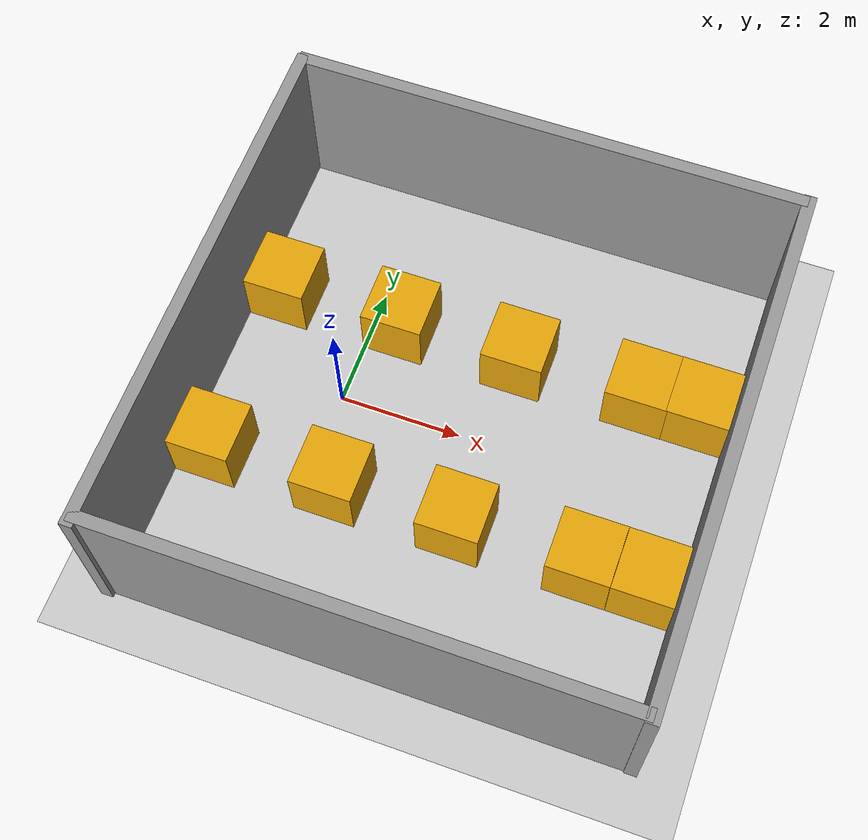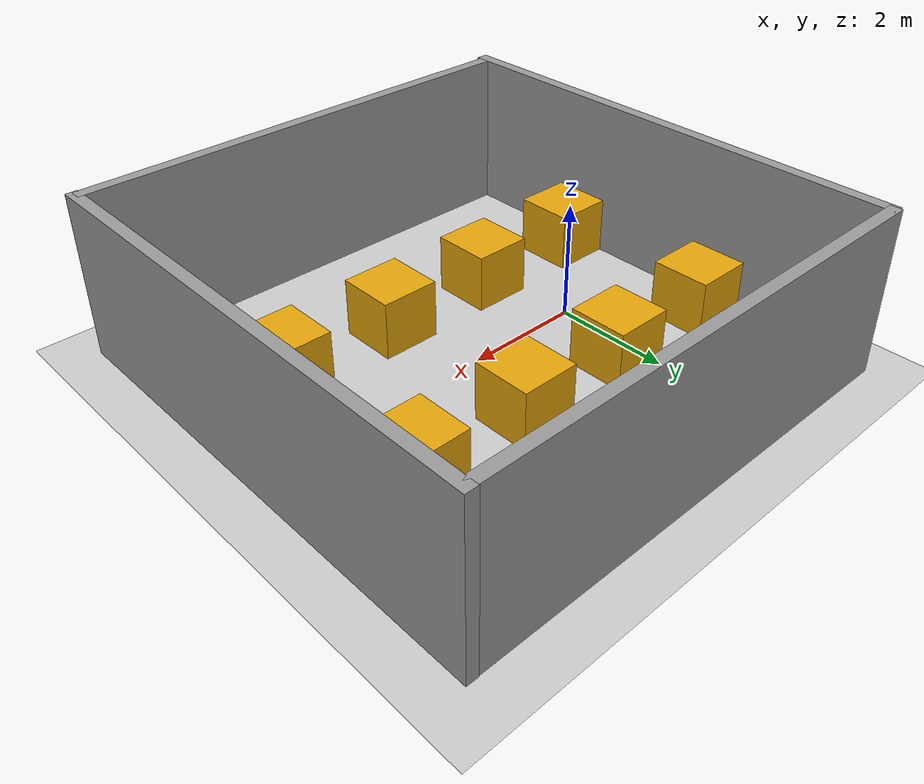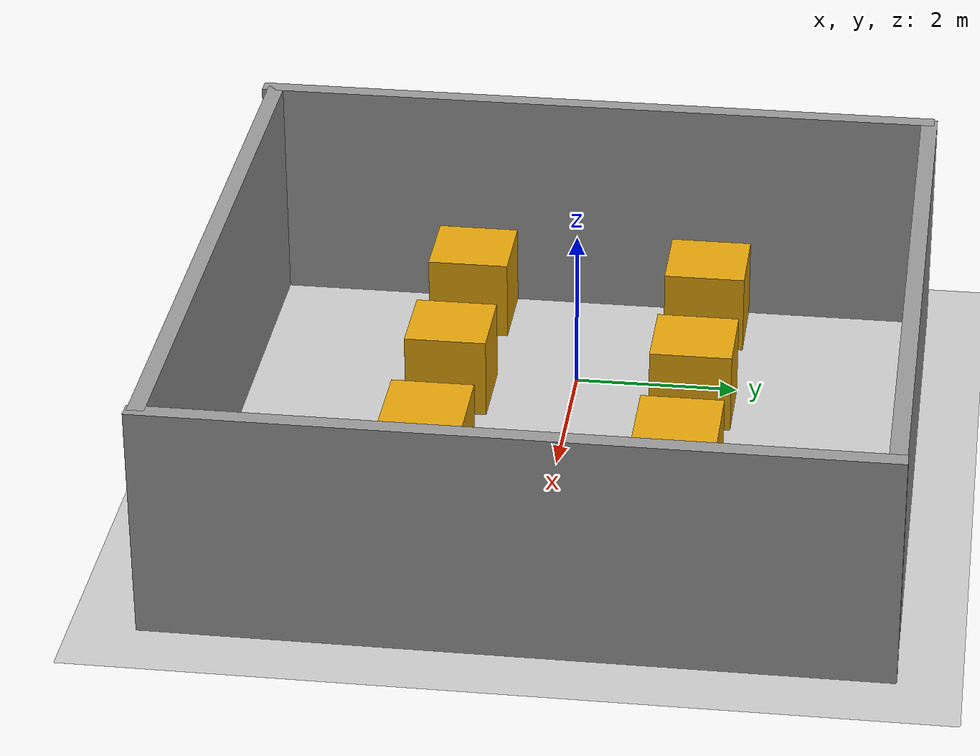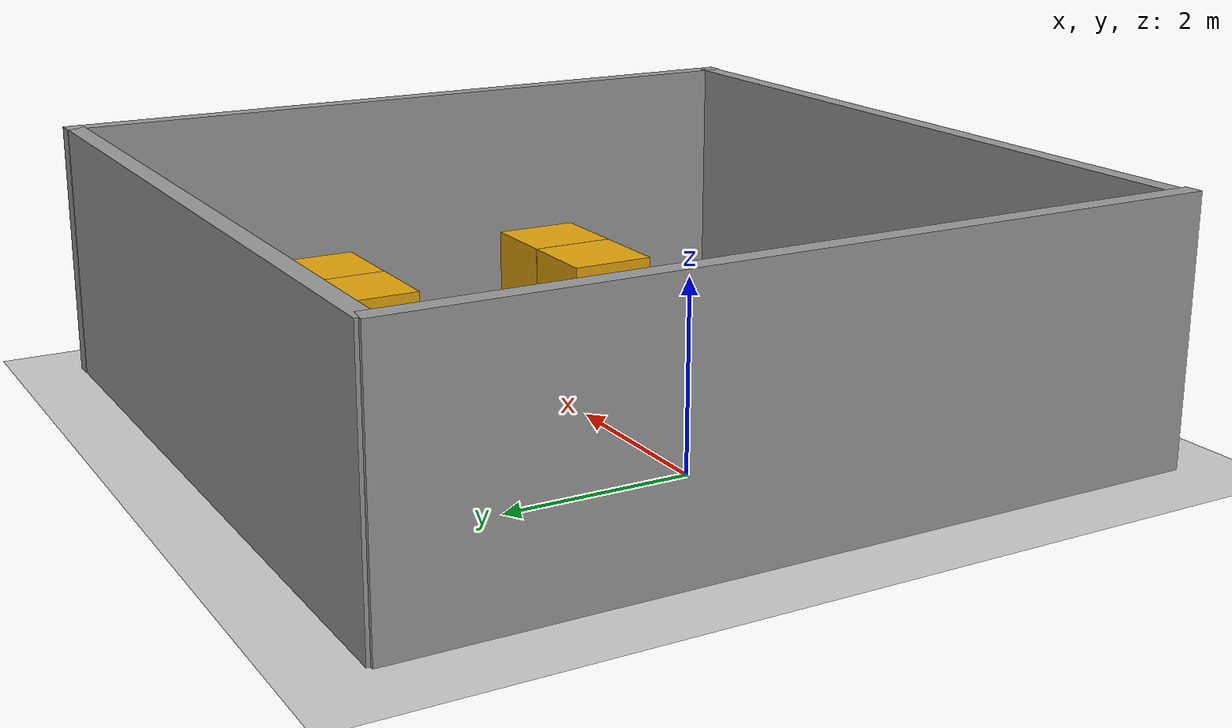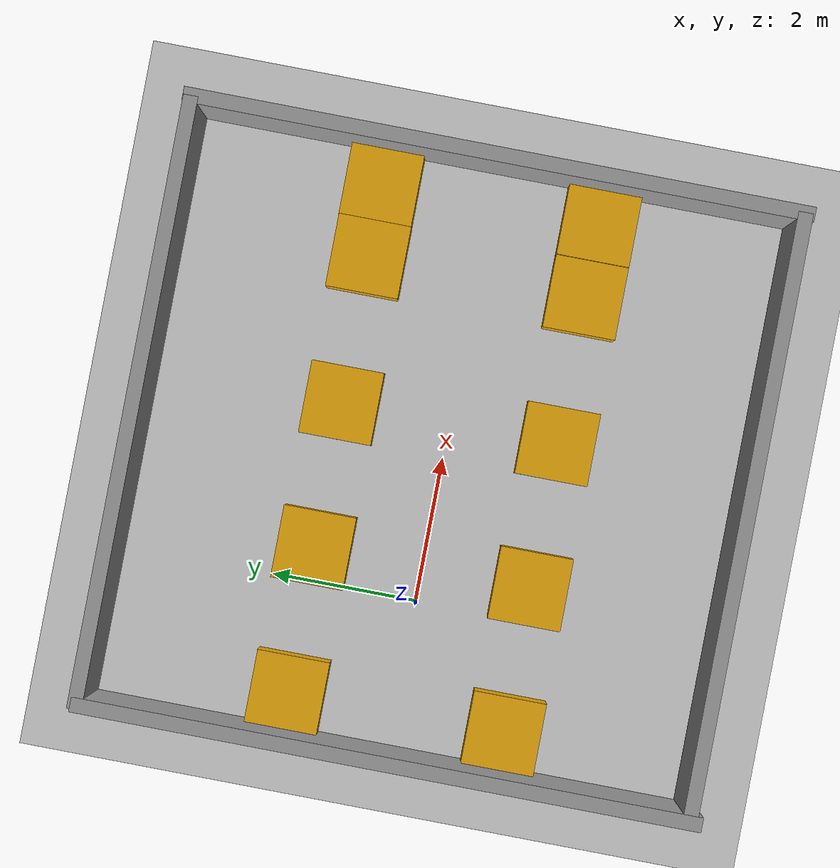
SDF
<sdf version="1.7">
 <world name="default">
  <light name="sun" type="directional">
   <pose>0 0 10 0 -0 0</pose>
   <diffuse>0.8 0.8 0.8 1</diffuse>
   <specular>0.2 0.2 0.2 1</specular>
   <attenuation>
    <range>1000</range>
    <constant>0.9</constant>
    <linear>0.01</linear>
    <quadratic>0.001</quadratic>
   </attenuation>
   <direction>-0.5 0.1 -0.9</direction>
   <spot><inner_angle>0</inner_angle><outer_angle>0</outer_angle><falloff>0</falloff></spot>
  </light>
  <model name="ground_plane">
   <static>1</static>
   <link name="link">
    <collision name="collision">
     <geometry><plane><normal>0 0 1</normal><size>100 100</size></plane></geometry>
     <surface><friction><ode><mu>100</mu><mu2>50</mu2></ode></friction></surface>
    </collision>
    <visual name="visual">
     <cast_shadows>0</cast_shadows>
     <geometry><plane><normal>0 0 1</normal><size>100 100</size></plane></geometry>
     <material>
      <script><uri>file://media/materials/scripts/gazebo.material</uri><name>Gazebo/Grey</name></script>
     </material>
    </visual>
   </link>
  </model>
  <gravity>0 0 -9.8</gravity>
  <magnetic_field>6e-06 2.3e-05 -4.2e-05</magnetic_field>
  <atmosphere type="adiabatic"/>
  <physics type="ode">
   <max_step_size>0.001</max_step_size>
   <real_time_factor>1</real_time_factor>
   <real_time_update_rate>1000</real_time_update_rate>
  </physics>
  <scene><ambient>0.4 0.4 0.4 1</ambient><background>0.7 0.7 0.7 1</background><shadows>1</shadows></scene>
  <audio><device>default</device></audio>
  <spherical_coordinates>
   <surface_model>EARTH_WGS84</surface_model>
   <latitude_deg>0</latitude_deg>
   <longitude_deg>0</longitude_deg>
   <elevation>0</elevation>
   <heading_deg>0</heading_deg>
  </spherical_coordinates>
  <model name="unit_box_big_withcolor">
   <link name="link">
    <inertial>
     <mass>1</mass>
     <inertia>
      <ixx>0.166667</ixx>
      <ixy>0</ixy>
      <ixz>0</ixz>
      <iyy>0.166667</iyy>
      <iyz>0</iyz>
      <izz>0.166667</izz>
     </inertia>
    </inertial>
    <visual name="visual">
     <geometry><box><size>1 1 1</size></box></geometry>
     <material>
      <script><name>Gazebo/Grey</name><uri>file://media/materials/scripts/gazebo.material</uri></script>
      <shader type="pixel"><normal_map>__default__</normal_map></shader>
      <ambient>0.898 0.647 0.039 1</ambient>
      <diffuse>0.898 0.647 0.039 1</diffuse>
      <specular>0.898 0.647 0.039 1</specular>
      <emissive>0 0 0 1</emissive>
     </material>
    </visual>
    <collision name="collision">
     <geometry><box><size>1 1 1</size></box></geometry>
     <surface>
      <friction>
       <ode><mu>1</mu><mu2>1</mu2><fdir1>0 0 0</fdir1><slip1>0</slip1><slip2>0</slip2></ode>
       <torsional>
        <coefficient>1</coefficient>
        <patch_radius>0</patch_radius>
        <surface_radius>0</surface_radius>
        <use_patch_radius>1</use_patch_radius>
        <ode><slip>0</slip></ode>
       </torsional>
      </friction>
      <bounce><restitution_coefficient>0</restitution_coefficient><threshold>1e+06</threshold></bounce>
      <contact>
       <collide_without_contact>0</collide_without_contact>
       <collide_without_contact_bitmask>1</collide_without_contact_bitmask>
       <collide_bitmask>1</collide_bitmask>
       <ode>
        <soft_cfm>0</soft_cfm>
        <soft_erp>0.2</soft_erp>
        <kp>1e+13</kp>
        <kd>1</kd>
        <max_vel>0.01</max_vel>
        <min_depth>0</min_depth>
       </ode>
       <bullet>
        <split_impulse>1</split_impulse>
        <split_impulse_penetration_threshold>-0.01</split_impulse_penetration_threshold>
        <soft_cfm>0</soft_cfm>
        <soft_erp>0.2</soft_erp>
        <kp>1e+13</kp>
        <kd>1</kd>
       </bullet>
      </contact>
     </surface>
    </collision>
   </link>
   <static>0</static>
   <pose>-1.51738 -1.50993 0.5 0 -0 0</pose>
  </model>
  <model name="unit_box_big_withcolor_clone">
   <link name="link">
    <inertial>
     <mass>1</mass>
     <inertia>
      <ixx>0.166667</ixx>
      <ixy>0</ixy>
      <ixz>0</ixz>
      <iyy>0.166667</iyy>
      <iyz>0</iyz>
      <izz>0.166667</izz>
     </inertia>
    </inertial>
    <visual name="visual">
     <geometry><box><size>1 1 1</size></box></geometry>
     <material>
      <script><name>Gazebo/Grey</name><uri>file://media/materials/scripts/gazebo.material</uri></script>
      <shader type="pixel"><normal_map>__default__</normal_map></shader>
      <ambient>0.898 0.647 0.039 1</ambient>
      <diffuse>0.898 0.647 0.039 1</diffuse>
      <specular>0.898 0.647 0.039 1</specular>
      <emissive>0 0 0 1</emissive>
     </material>
    </visual>
    <collision name="collision">
     <geometry><box><size>1 1 1</size></box></geometry>
     <surface>
      <friction>
       <ode><mu>1</mu><mu2>1</mu2><fdir1>0 0 0</fdir1><slip1>0</slip1><slip2>0</slip2></ode>
       <torsional>
        <coefficient>1</coefficient>
        <patch_radius>0</patch_radius>
        <surface_radius>0</surface_radius>
        <use_patch_radius>1</use_patch_radius>
        <ode><slip>0</slip></ode>
       </torsional>
      </friction>
      <bounce><restitution_coefficient>0</restitution_coefficient><threshold>1e+06</threshold></bounce>
      <contact>
       <collide_without_contact>0</collide_without_contact>
       <collide_without_contact_bitmask>1</collide_without_contact_bitmask>
       <collide_bitmask>1</collide_bitmask>
       <ode>
        <soft_cfm>0</soft_cfm>
        <soft_erp>0.2</soft_erp>
        <kp>1e+13</kp>
        <kd>1</kd>
        <max_vel>0.01</max_vel>
        <min_depth>0</min_depth>
       </ode>
       <bullet>
        <split_impulse>1</split_impulse>
        <split_impulse_penetration_threshold>-0.01</split_impulse_penetration_threshold>
        <soft_cfm>0</soft_cfm>
        <soft_erp>0.2</soft_erp>
        <kp>1e+13</kp>
        <kd>1</kd>
       </bullet>
      </contact>
     </surface>
    </collision>
   </link>
   <static>0</static>
   <pose>0.480502 -1.50097 0.5 0 -0 0</pose>
  </model>
  <model name="unit_box_big_withcolor_clone_clone">
   <link name="link">
    <inertial>
     <mass>1</mass>
     <inertia>
      <ixx>0.166667</ixx>
      <ixy>0</ixy>
      <ixz>0</ixz>
      <iyy>0.166667</iyy>
      <iyz>0</iyz>
      <izz>0.166667</izz>
     </inertia>
    </inertial>
    <visual name="visual">
     <geometry><box><size>1 1 1</size></box></geometry>
     <material>
      <script><name>Gazebo/Grey</name><uri>file://media/materials/scripts/gazebo.material</uri></script>
      <shader type="pixel"><normal_map>__default__</normal_map></shader>
      <ambient>0.898 0.647 0.039 1</ambient>
      <diffuse>0.898 0.647 0.039 1</diffuse>
      <specular>0.898 0.647 0.039 1</specular>
      <emissive>0 0 0 1</emissive>
     </material>
    </visual>
    <collision name="collision">
     <geometry><box><size>1 1 1</size></box></geometry>
     <surface>
      <friction>
       <ode><mu>1</mu><mu2>1</mu2><fdir1>0 0 0</fdir1><slip1>0</slip1><slip2>0</slip2></ode>
       <torsional>
        <coefficient>1</coefficient>
        <patch_radius>0</patch_radius>
        <surface_radius>0</surface_radius>
        <use_patch_radius>1</use_patch_radius>
        <ode><slip>0</slip></ode>
       </torsional>
      </friction>
      <bounce><restitution_coefficient>0</restitution_coefficient><threshold>1e+06</threshold></bounce>
      <contact>
       <collide_without_contact>0</collide_without_contact>
       <collide_without_contact_bitmask>1</collide_without_contact_bitmask>
       <collide_bitmask>1</collide_bitmask>
       <ode>
        <soft_cfm>0</soft_cfm>
        <soft_erp>0.2</soft_erp>
        <kp>1e+13</kp>
        <kd>1</kd>
        <max_vel>0.01</max_vel>
        <min_depth>0</min_depth>
       </ode>
       <bullet>
        <split_impulse>1</split_impulse>
        <split_impulse_penetration_threshold>-0.01</split_impulse_penetration_threshold>
        <soft_cfm>0</soft_cfm>
        <soft_erp>0.2</soft_erp>
        <kp>1e+13</kp>
        <kd>1</kd>
       </bullet>
      </contact>
     </surface>
    </collision>
   </link>
   <static>0</static>
   <pose>2.48522 -1.49382 0.5 0 -0 0</pose>
  </model>
  <model name="unit_box_big_withcolor_clone_clone_clone">
   <link name="link">
    <inertial>
     <mass>1</mass>
     <inertia>
      <ixx>0.166667</ixx>
      <ixy>0</ixy>
      <ixz>0</ixz>
      <iyy>0.166667</iyy>
      <iyz>0</iyz>
      <izz>0.166667</izz>
     </inertia>
    </inertial>
    <visual name="visual">
     <geometry><box><size>1 1 1</size></box></geometry>
     <material>
      <script><name>Gazebo/Grey</name><uri>file://media/materials/scripts/gazebo.material</uri></script>
      <shader type="pixel"><normal_map>__default__</normal_map></shader>
      <ambient>0.898 0.647 0.039 1</ambient>
      <diffuse>0.898 0.647 0.039 1</diffuse>
      <specular>0.898 0.647 0.039 1</specular>
      <emissive>0 0 0 1</emissive>
     </material>
    </visual>
    <collision name="collision">
     <geometry><box><size>1 1 1</size></box></geometry>
     <surface>
      <friction>
       <ode><mu>1</mu><mu2>1</mu2><fdir1>0 0 0</fdir1><slip1>0</slip1><slip2>0</slip2></ode>
       <torsional>
        <coefficient>1</coefficient>
        <patch_radius>0</patch_radius>
        <surface_radius>0</surface_radius>
        <use_patch_radius>1</use_patch_radius>
        <ode><slip>0</slip></ode>
       </torsional>
      </friction>
      <bounce><restitution_coefficient>0</restitution_coefficient><threshold>1e+06</threshold></bounce>
      <contact>
       <collide_without_contact>0</collide_without_contact>
       <collide_without_contact_bitmask>1</collide_without_contact_bitmask>
       <collide_bitmask>1</collide_bitmask>
       <ode>
        <soft_cfm>0</soft_cfm>
        <soft_erp>0.2</soft_erp>
        <kp>1e+13</kp>
        <kd>1</kd>
        <max_vel>0.01</max_vel>
        <min_depth>0</min_depth>
       </ode>
       <bullet>
        <split_impulse>1</split_impulse>
        <split_impulse_penetration_threshold>-0.01</split_impulse_penetration_threshold>
        <soft_cfm>0</soft_cfm>
        <soft_erp>0.2</soft_erp>
        <kp>1e+13</kp>
        <kd>1</kd>
       </bullet>
      </contact>
     </surface>
    </collision>
   </link>
   <static>0</static>
   <pose>4.50859 -1.4927 0.5 0 -0 0</pose>
  </model>
  <model name="unit_box_big_withcolor_clone_0">
   <link name="link">
    <inertial>
     <mass>1</mass>
     <inertia>
      <ixx>0.166667</ixx>
      <ixy>0</ixy>
      <ixz>0</ixz>
      <iyy>0.166667</iyy>
      <iyz>0</iyz>
      <izz>0.166667</izz>
     </inertia>
    </inertial>
    <visual name="visual">
     <geometry><box><size>1 1 1</size></box></geometry>
     <material>
      <script><name>Gazebo/Grey</name><uri>file://media/materials/scripts/gazebo.material</uri></script>
      <shader type="pixel"><normal_map>__default__</normal_map></shader>
      <ambient>0.898 0.647 0.039 1</ambient>
      <diffuse>0.898 0.647 0.039 1</diffuse>
      <specular>0.898 0.647 0.039 1</specular>
      <emissive>0 0 0 1</emissive>
     </material>
    </visual>
    <collision name="collision">
     <geometry><box><size>1 1 1</size></box></geometry>
     <surface>
      <friction>
       <ode><mu>1</mu><mu2>1</mu2><fdir1>0 0 0</fdir1><slip1>0</slip1><slip2>0</slip2></ode>
       <torsional>
        <coefficient>1</coefficient>
        <patch_radius>0</patch_radius>
        <surface_radius>0</surface_radius>
        <use_patch_radius>1</use_patch_radius>
        <ode><slip>0</slip></ode>
       </torsional>
      </friction>
      <bounce><restitution_coefficient>0</restitution_coefficient><threshold>1e+06</threshold></bounce>
      <contact>
       <collide_without_contact>0</collide_without_contact>
       <collide_without_contact_bitmask>1</collide_without_contact_bitmask>
       <collide_bitmask>1</collide_bitmask>
       <ode>
        <soft_cfm>0</soft_cfm>
        <soft_erp>0.2</soft_erp>
        <kp>1e+13</kp>
        <kd>1</kd>
        <max_vel>0.01</max_vel>
        <min_depth>0</min_depth>
       </ode>
       <bullet>
        <split_impulse>1</split_impulse>
        <split_impulse_penetration_threshold>-0.01</split_impulse_penetration_threshold>
        <soft_cfm>0</soft_cfm>
        <soft_erp>0.2</soft_erp>
        <kp>1e+13</kp>
        <kd>1</kd>
       </bullet>
      </contact>
     </surface>
    </collision>
   </link>
   <static>0</static>
   <pose>-1.51646 1.48635 0.5 0 -0 0</pose>
  </model>
  <model name="unit_box_big_withcolor_clone_0_clone">
   <link name="link">
    <inertial>
     <mass>1</mass>
     <inertia>
      <ixx>0.166667</ixx>
      <ixy>0</ixy>
      <ixz>0</ixz>
      <iyy>0.166667</iyy>
      <iyz>0</iyz>
      <izz>0.166667</izz>
     </inertia>
    </inertial>
    <visual name="visual">
     <geometry><box><size>1 1 1</size></box></geometry>
     <material>
      <script><name>Gazebo/Grey</name><uri>file://media/materials/scripts/gazebo.material</uri></script>
      <shader type="pixel"><normal_map>__default__</normal_map></shader>
      <ambient>0.898 0.647 0.039 1</ambient>
      <diffuse>0.898 0.647 0.039 1</diffuse>
      <specular>0.898 0.647 0.039 1</specular>
      <emissive>0 0 0 1</emissive>
     </material>
    </visual>
    <collision name="collision">
     <geometry><box><size>1 1 1</size></box></geometry>
     <surface>
      <friction>
       <ode><mu>1</mu><mu2>1</mu2><fdir1>0 0 0</fdir1><slip1>0</slip1><slip2>0</slip2></ode>
       <torsional>
        <coefficient>1</coefficient>
        <patch_radius>0</patch_radius>
        <surface_radius>0</surface_radius>
        <use_patch_radius>1</use_patch_radius>
        <ode><slip>0</slip></ode>
       </torsional>
      </friction>
      <bounce><restitution_coefficient>0</restitution_coefficient><threshold>1e+06</threshold></bounce>
      <contact>
       <collide_without_contact>0</collide_without_contact>
       <collide_without_contact_bitmask>1</collide_without_contact_bitmask>
       <collide_bitmask>1</collide_bitmask>
       <ode>
        <soft_cfm>0</soft_cfm>
        <soft_erp>0.2</soft_erp>
        <kp>1e+13</kp>
        <kd>1</kd>
        <max_vel>0.01</max_vel>
        <min_depth>0</min_depth>
       </ode>
       <bullet>
        <split_impulse>1</split_impulse>
        <split_impulse_penetration_threshold>-0.01</split_impulse_penetration_threshold>
        <soft_cfm>0</soft_cfm>
        <soft_erp>0.2</soft_erp>
        <kp>1e+13</kp>
        <kd>1</kd>
       </bullet>
      </contact>
     </surface>
    </collision>
   </link>
   <static>0</static>
   <pose>0.480896 1.50085 0.5 0 -0 0</pose>
  </model>
  <model name="unit_box_big_withcolor_clone_0_clone_clone">
   <link name="link">
    <inertial>
     <mass>1</mass>
     <inertia>
      <ixx>0.166667</ixx>
      <ixy>0</ixy>
      <ixz>0</ixz>
      <iyy>0.166667</iyy>
      <iyz>0</iyz>
      <izz>0.166667</izz>
     </inertia>
    </inertial>
    <visual name="visual">
     <geometry><box><size>1 1 1</size></box></geometry>
     <material>
      <script><name>Gazebo/Grey</name><uri>file://media/materials/scripts/gazebo.material</uri></script>
      <shader type="pixel"><normal_map>__default__</normal_map></shader>
      <ambient>0.898 0.647 0.039 1</ambient>
      <diffuse>0.898 0.647 0.039 1</diffuse>
      <specular>0.898 0.647 0.039 1</specular>
      <emissive>0 0 0 1</emissive>
     </material>
    </visual>
    <collision name="collision">
     <geometry><box><size>1 1 1</size></box></geometry>
     <surface>
      <friction>
       <ode><mu>1</mu><mu2>1</mu2><fdir1>0 0 0</fdir1><slip1>0</slip1><slip2>0</slip2></ode>
       <torsional>
        <coefficient>1</coefficient>
        <patch_radius>0</patch_radius>
        <surface_radius>0</surface_radius>
        <use_patch_radius>1</use_patch_radius>
        <ode><slip>0</slip></ode>
       </torsional>
      </friction>
      <bounce><restitution_coefficient>0</restitution_coefficient><threshold>1e+06</threshold></bounce>
      <contact>
       <collide_without_contact>0</collide_without_contact>
       <collide_without_contact_bitmask>1</collide_without_contact_bitmask>
       <collide_bitmask>1</collide_bitmask>
       <ode>
        <soft_cfm>0</soft_cfm>
        <soft_erp>0.2</soft_erp>
        <kp>1e+13</kp>
        <kd>1</kd>
        <max_vel>0.01</max_vel>
        <min_depth>0</min_depth>
       </ode>
       <bullet>
        <split_impulse>1</split_impulse>
        <split_impulse_penetration_threshold>-0.01</split_impulse_penetration_threshold>
        <soft_cfm>0</soft_cfm>
        <soft_erp>0.2</soft_erp>
        <kp>1e+13</kp>
        <kd>1</kd>
       </bullet>
      </contact>
     </surface>
    </collision>
   </link>
   <static>0</static>
   <pose>2.48304 1.49826 0.5 0 -0 0</pose>
  </model>
  <model name="unit_box_big_withcolor_clone_0_clone_clone_clone">
   <link name="link">
    <inertial>
     <mass>1</mass>
     <inertia>
      <ixx>0.166667</ixx>
      <ixy>0</ixy>
      <ixz>0</ixz>
      <iyy>0.166667</iyy>
      <iyz>0</iyz>
      <izz>0.166667</izz>
     </inertia>
    </inertial>
    <visual name="visual">
     <geometry><box><size>1 1 1</size></box></geometry>
     <material>
      <script><name>Gazebo/Grey</name><uri>file://media/materials/scripts/gazebo.material</uri></script>
      <shader type="pixel"><normal_map>__default__</normal_map></shader>
      <ambient>0.898 0.647 0.039 1</ambient>
      <diffuse>0.898 0.647 0.039 1</diffuse>
      <specular>0.898 0.647 0.039 1</specular>
      <emissive>0 0 0 1</emissive>
     </material>
    </visual>
    <collision name="collision">
     <geometry><box><size>1 1 1</size></box></geometry>
     <surface>
      <friction>
       <ode><mu>1</mu><mu2>1</mu2><fdir1>0 0 0</fdir1><slip1>0</slip1><slip2>0</slip2></ode>
       <torsional>
        <coefficient>1</coefficient>
        <patch_radius>0</patch_radius>
        <surface_radius>0</surface_radius>
        <use_patch_radius>1</use_patch_radius>
        <ode><slip>0</slip></ode>
       </torsional>
      </friction>
      <bounce><restitution_coefficient>0</restitution_coefficient><threshold>1e+06</threshold></bounce>
      <contact>
       <collide_without_contact>0</collide_without_contact>
       <collide_without_contact_bitmask>1</collide_without_contact_bitmask>
       <collide_bitmask>1</collide_bitmask>
       <ode>
        <soft_cfm>0</soft_cfm>
        <soft_erp>0.2</soft_erp>
        <kp>1e+13</kp>
        <kd>1</kd>
        <max_vel>0.01</max_vel>
        <min_depth>0</min_depth>
       </ode>
       <bullet>
        <split_impulse>1</split_impulse>
        <split_impulse_penetration_threshold>-0.01</split_impulse_penetration_threshold>
        <soft_cfm>0</soft_cfm>
        <soft_erp>0.2</soft_erp>
        <kp>1e+13</kp>
        <kd>1</kd>
       </bullet>
      </contact>
     </surface>
    </collision>
   </link>
   <static>0</static>
   <pose>4.50519 1.50975 0.5 0 -0 0</pose>
  </model>
  <model name="unit_box_big_withcolor_clone_0_clone_clone_clone_clone">
   <link name="link">
    <inertial>
     <mass>1</mass>
     <inertia>
      <ixx>0.166667</ixx>
      <ixy>0</ixy>
      <ixz>0</ixz>
      <iyy>0.166667</iyy>
      <iyz>0</iyz>
      <izz>0.166667</izz>
     </inertia>
    </inertial>
    <visual name="visual">
     <geometry><box><size>1 1 1</size></box></geometry>
     <material>
      <script><name>Gazebo/Grey</name><uri>file://media/materials/scripts/gazebo.material</uri></script>
      <shader type="pixel"><normal_map>__default__</normal_map></shader>
      <ambient>0.898 0.647 0.039 1</ambient>
      <diffuse>0.898 0.647 0.039 1</diffuse>
      <specular>0.898 0.647 0.039 1</specular>
      <emissive>0 0 0 1</emissive>
     </material>
    </visual>
    <collision name="collision">
     <geometry><box><size>1 1 1</size></box></geometry>
     <surface>
      <friction>
       <ode><mu>1</mu><mu2>1</mu2><fdir1>0 0 0</fdir1><slip1>0</slip1><slip2>0</slip2></ode>
       <torsional>
        <coefficient>1</coefficient>
        <patch_radius>0</patch_radius>
        <surface_radius>0</surface_radius>
        <use_patch_radius>1</use_patch_radius>
        <ode><slip>0</slip></ode>
       </torsional>
      </friction>
      <bounce><restitution_coefficient>0</restitution_coefficient><threshold>1e+06</threshold></bounce>
      <contact>
       <collide_without_contact>0</collide_without_contact>
       <collide_without_contact_bitmask>1</collide_without_contact_bitmask>
       <collide_bitmask>1</collide_bitmask>
       <ode>
        <soft_cfm>0</soft_cfm>
        <soft_erp>0.2</soft_erp>
        <kp>1e+13</kp>
        <kd>1</kd>
        <max_vel>0.01</max_vel>
        <min_depth>0</min_depth>
       </ode>
       <bullet>
        <split_impulse>1</split_impulse>
        <split_impulse_penetration_threshold>-0.01</split_impulse_penetration_threshold>
        <soft_cfm>0</soft_cfm>
        <soft_erp>0.2</soft_erp>
        <kp>1e+13</kp>
        <kd>1</kd>
       </bullet>
      </contact>
     </surface>
    </collision>
   </link>
   <static>0</static>
   <pose>5.48348 1.51324 0.5 0 -0 0</pose>
  </model>
  <model name="grey_wall_clone_longer_clone_clone_clone">
   <link name="link">
    <pose>0 0 1.4 0 -0 0</pose>
    <inertial>
     <mass>1</mass>
     <inertia><ixx>1</ixx><ixy>0</ixy><ixz>0</ixz><iyy>1</iyy><iyz>0</iyz><izz>1</izz></inertia>
    </inertial>
    <visual name="visual">
     <cast_shadows>0</cast_shadows>
     <geometry><box><size>8.5 0.2 2.8</size></box></geometry>
     <material>
      <script>
       <uri>model://grey_wall/materials/scripts</uri>
       <uri>model://grey_wall/materials/textures</uri>
       <name>vrc/grey_wall</name>
      </script>
      <shader type="pixel"><normal_map>__default__</normal_map></shader>
      <ambient>1 1 1 1</ambient>
      <diffuse>1 1 1 1</diffuse>
      <specular>0 0 0 1</specular>
      <emissive>0 0 0 1</emissive>
     </material>
    </visual>
    <collision name="collision">
     <geometry><box><size>8.5 0.2 2.8</size></box></geometry>
     <surface>
      <friction>
       <ode><mu>1</mu><mu2>1</mu2><fdir1>0 0 0</fdir1><slip1>0</slip1><slip2>0</slip2></ode>
       <torsional>
        <coefficient>1</coefficient>
        <patch_radius>0</patch_radius>
        <surface_radius>0</surface_radius>
        <use_patch_radius>1</use_patch_radius>
        <ode><slip>0</slip></ode>
       </torsional>
      </friction>
      <bounce><restitution_coefficient>0</restitution_coefficient><threshold>1e+06</threshold></bounce>
      <contact>
       <collide_without_contact>0</collide_without_contact>
       <collide_without_contact_bitmask>1</collide_without_contact_bitmask>
       <collide_bitmask>1</collide_bitmask>
       <ode>
        <soft_cfm>0</soft_cfm>
        <soft_erp>0.2</soft_erp>
        <kp>1e+13</kp>
        <kd>1</kd>
        <max_vel>0.01</max_vel>
        <min_depth>0</min_depth>
       </ode>
       <bullet>
        <split_impulse>1</split_impulse>
        <split_impulse_penetration_threshold>-0.01</split_impulse_penetration_threshold>
        <soft_cfm>0</soft_cfm>
        <soft_erp>0.2</soft_erp>
        <kp>1e+13</kp>
        <kd>1</kd>
       </bullet>
      </contact>
     </surface>
    </collision>
   </link>
   <static>1</static>
   <pose>-2.11607 -0.02015 0 0 -0 1.57</pose>
  </model>
  <model name="grey_wall">
   <link name="link">
    <pose>0 0 1.4 0 -0 0</pose>
    <inertial>
     <mass>1</mass>
     <inertia><ixx>1</ixx><ixy>0</ixy><ixz>0</ixz><iyy>1</iyy><iyz>0</iyz><izz>1</izz></inertia>
    </inertial>
    <visual name="visual">
     <cast_shadows>0</cast_shadows>
     <geometry><box><size>8.25 0.2 2.8</size></box></geometry>
     <material>
      <script>
       <uri>model://grey_wall/materials/scripts</uri>
       <uri>model://grey_wall/materials/textures</uri>
       <name>vrc/grey_wall</name>
      </script>
      <shader type="pixel"><normal_map>__default__</normal_map></shader>
      <ambient>1 1 1 1</ambient>
      <diffuse>1 1 1 1</diffuse>
      <specular>0 0 0 1</specular>
      <emissive>0 0 0 1</emissive>
     </material>
     <pose>-0.25 0 0 0 -0 0</pose>
    </visual>
    <collision name="collision">
     <pose>-0.25 0 0 0 -0 0</pose>
     <geometry><box><size>8.25 0.2 2.8</size></box></geometry>
     <surface>
      <friction>
       <ode><mu>1</mu><mu2>1</mu2><fdir1>0 0 0</fdir1><slip1>0</slip1><slip2>0</slip2></ode>
       <torsional>
        <coefficient>1</coefficient>
        <patch_radius>0</patch_radius>
        <surface_radius>0</surface_radius>
        <use_patch_radius>1</use_patch_radius>
        <ode><slip>0</slip></ode>
       </torsional>
      </friction>
      <bounce><restitution_coefficient>0</restitution_coefficient><threshold>1e+06</threshold></bounce>
      <contact>
       <collide_without_contact>0</collide_without_contact>
       <collide_without_contact_bitmask>1</collide_without_contact_bitmask>
       <collide_bitmask>1</collide_bitmask>
       <ode>
        <soft_cfm>0</soft_cfm>
        <soft_erp>0.2</soft_erp>
        <kp>1e+13</kp>
        <kd>1</kd>
        <max_vel>0.01</max_vel>
        <min_depth>0</min_depth>
       </ode>
       <bullet>
        <split_impulse>1</split_impulse>
        <split_impulse_penetration_threshold>-0.01</split_impulse_penetration_threshold>
        <soft_cfm>0</soft_cfm>
        <soft_erp>0.2</soft_erp>
        <kp>1e+13</kp>
        <kd>1</kd>
       </bullet>
      </contact>
     </surface>
    </collision>
   </link>
   <static>1</static>
   <pose>2.2087 -4.1019 0 0 -0 0</pose>
  </model>
  <model name="grey_wall_clone_0">
   <link name="link">
    <pose>0 0 1.4 0 -0 0</pose>
    <inertial>
     <mass>1</mass>
     <inertia><ixx>1</ixx><ixy>0</ixy><ixz>0</ixz><iyy>1</iyy><iyz>0</iyz><izz>1</izz></inertia>
    </inertial>
    <visual name="visual">
     <cast_shadows>0</cast_shadows>
     <geometry><box><size>8.25 0.2 2.8</size></box></geometry>
     <material>
      <script>
       <uri>model://grey_wall/materials/scripts</uri>
       <uri>model://grey_wall/materials/textures</uri>
       <name>vrc/grey_wall</name>
      </script>
      <shader type="pixel"><normal_map>__default__</normal_map></shader>
      <ambient>1 1 1 1</ambient>
      <diffuse>1 1 1 1</diffuse>
      <specular>0 0 0 1</specular>
      <emissive>0 0 0 1</emissive>
     </material>
     <pose>-0.25 0 0 0 -0 0</pose>
    </visual>
    <collision name="collision">
     <pose>-0.25 0 0 0 -0 0</pose>
     <geometry><box><size>8.25 0.2 2.8</size></box></geometry>
     <surface>
      <friction>
       <ode><mu>1</mu><mu2>1</mu2><fdir1>0 0 0</fdir1><slip1>0</slip1><slip2>0</slip2></ode>
       <torsional>
        <coefficient>1</coefficient>
        <patch_radius>0</patch_radius>
        <surface_radius>0</surface_radius>
        <use_patch_radius>1</use_patch_radius>
        <ode><slip>0</slip></ode>
       </torsional>
      </friction>
      <bounce><restitution_coefficient>0</restitution_coefficient><threshold>1e+06</threshold></bounce>
      <contact>
       <collide_without_contact>0</collide_without_contact>
       <collide_without_contact_bitmask>1</collide_without_contact_bitmask>
       <collide_bitmask>1</collide_bitmask>
       <ode>
        <soft_cfm>0</soft_cfm>
        <soft_erp>0.2</soft_erp>
        <kp>1e+13</kp>
        <kd>1</kd>
        <max_vel>0.01</max_vel>
        <min_depth>0</min_depth>
       </ode>
       <bullet>
        <split_impulse>1</split_impulse>
        <split_impulse_penetration_threshold>-0.01</split_impulse_penetration_threshold>
        <soft_cfm>0</soft_cfm>
        <soft_erp>0.2</soft_erp>
        <kp>1e+13</kp>
        <kd>1</kd>
       </bullet>
      </contact>
     </surface>
    </collision>
   </link>
   <static>1</static>
   <pose>2.20545 4.16779 0 0 -0 0</pose>
  </model>
  <model name="unit_box_big_withcolor_clone_clone_clone_clone">
   <link name="link">
    <inertial>
     <mass>1</mass>
     <inertia>
      <ixx>0.166667</ixx>
      <ixy>0</ixy>
      <ixz>0</ixz>
      <iyy>0.166667</iyy>
      <iyz>0</iyz>
      <izz>0.166667</izz>
     </inertia>
    </inertial>
    <visual name="visual">
     <geometry><box><size>1 1 1</size></box></geometry>
     <material>
      <script><name>Gazebo/Grey</name><uri>file://media/materials/scripts/gazebo.material</uri></script>
      <shader type="pixel"><normal_map>__default__</normal_map></shader>
      <ambient>0.898 0.647 0.039 1</ambient>
      <diffuse>0.898 0.647 0.039 1</diffuse>
      <specular>0.898 0.647 0.039 1</specular>
      <emissive>0 0 0 1</emissive>
     </material>
    </visual>
    <collision name="collision">
     <geometry><box><size>1 1 1</size></box></geometry>
     <surface>
      <friction>
       <ode><mu>1</mu><mu2>1</mu2><fdir1>0 0 0</fdir1><slip1>0</slip1><slip2>0</slip2></ode>
       <torsional>
        <coefficient>1</coefficient>
        <patch_radius>0</patch_radius>
        <surface_radius>0</surface_radius>
        <use_patch_radius>1</use_patch_radius>
        <ode><slip>0</slip></ode>
       </torsional>
      </friction>
      <bounce><restitution_coefficient>0</restitution_coefficient><threshold>1e+06</threshold></bounce>
      <contact>
       <collide_without_contact>0</collide_without_contact>
       <collide_without_contact_bitmask>1</collide_without_contact_bitmask>
       <collide_bitmask>1</collide_bitmask>
       <ode>
        <soft_cfm>0</soft_cfm>
        <soft_erp>0.2</soft_erp>
        <kp>1e+13</kp>
        <kd>1</kd>
        <max_vel>0.01</max_vel>
        <min_depth>0</min_depth>
       </ode>
       <bullet>
        <split_impulse>1</split_impulse>
        <split_impulse_penetration_threshold>-0.01</split_impulse_penetration_threshold>
        <soft_cfm>0</soft_cfm>
        <soft_erp>0.2</soft_erp>
        <kp>1e+13</kp>
        <kd>1</kd>
       </bullet>
      </contact>
     </surface>
    </collision>
   </link>
   <static>0</static>
   <pose>5.51358 -1.49447 0.5 0 -0 0</pose>
  </model>
  <model name="grey_wall_clone_longer_clone_clone_clone_clone">
   <link name="link">
    <pose>0 0 1.4 0 -0 0</pose>
    <inertial>
     <mass>1</mass>
     <inertia><ixx>1</ixx><ixy>0</ixy><ixz>0</ixz><iyy>1</iyy><iyz>0</iyz><izz>1</izz></inertia>
    </inertial>
    <visual name="visual">
     <cast_shadows>0</cast_shadows>
     <geometry><box><size>8.5 0.2 2.8</size></box></geometry>
     <material>
      <script>
       <uri>model://grey_wall/materials/scripts</uri>
       <uri>model://grey_wall/materials/textures</uri>
       <name>vrc/grey_wall</name>
      </script>
      <shader type="pixel"><normal_map>__default__</normal_map></shader>
      <ambient>1 1 1 1</ambient>
      <diffuse>1 1 1 1</diffuse>
      <specular>0 0 0 1</specular>
      <emissive>0 0 0 1</emissive>
     </material>
    </visual>
    <collision name="collision">
     <geometry><box><size>8.5 0.2 2.8</size></box></geometry>
     <surface>
      <friction>
       <ode><mu>1</mu><mu2>1</mu2><fdir1>0 0 0</fdir1><slip1>0</slip1><slip2>0</slip2></ode>
       <torsional>
        <coefficient>1</coefficient>
        <patch_radius>0</patch_radius>
        <surface_radius>0</surface_radius>
        <use_patch_radius>1</use_patch_radius>
        <ode><slip>0</slip></ode>
       </torsional>
      </friction>
      <bounce><restitution_coefficient>0</restitution_coefficient><threshold>1e+06</threshold></bounce>
      <contact>
       <collide_without_contact>0</collide_without_contact>
       <collide_without_contact_bitmask>1</collide_without_contact_bitmask>
       <collide_bitmask>1</collide_bitmask>
       <ode>
        <soft_cfm>0</soft_cfm>
        <soft_erp>0.2</soft_erp>
        <kp>1e+13</kp>
        <kd>1</kd>
        <max_vel>0.01</max_vel>
        <min_depth>0</min_depth>
       </ode>
       <bullet>
        <split_impulse>1</split_impulse>
        <split_impulse_penetration_threshold>-0.01</split_impulse_penetration_threshold>
        <soft_cfm>0</soft_cfm>
        <soft_erp>0.2</soft_erp>
        <kp>1e+13</kp>
        <kd>1</kd>
       </bullet>
      </contact>
     </surface>
    </collision>
   </link>
   <static>1</static>
   <pose>6.08084 0.0255 0 0 -0 1.57</pose>
  </model>
 </world>
</sdf>
